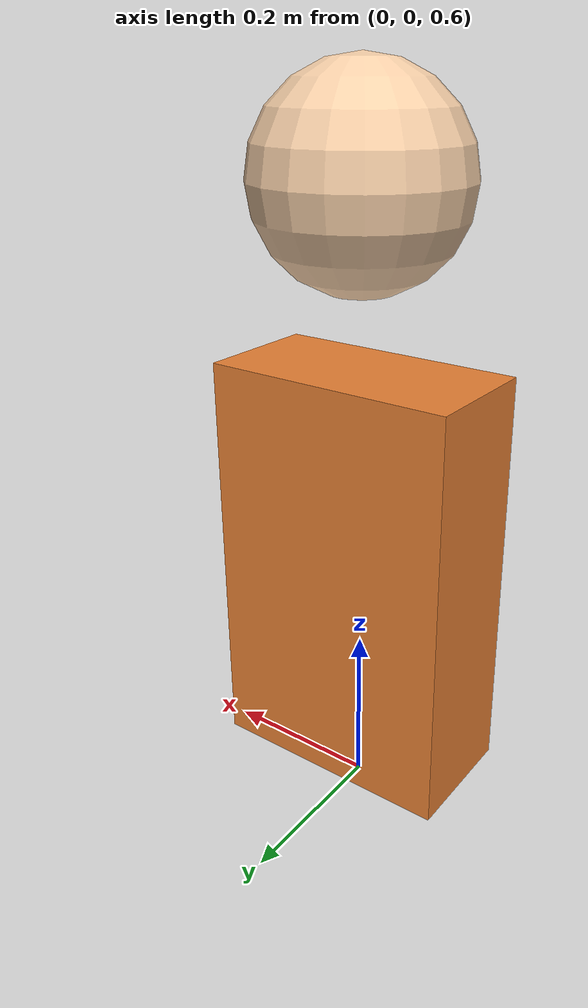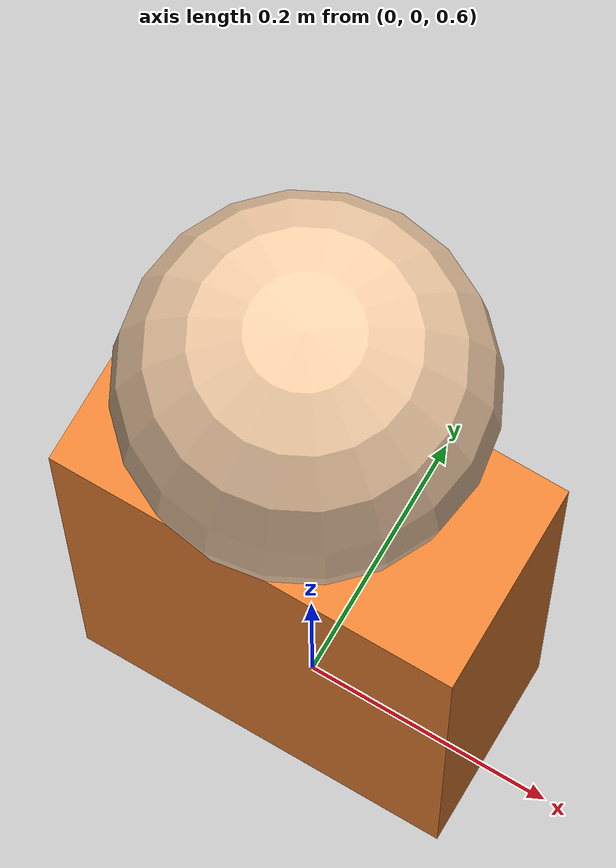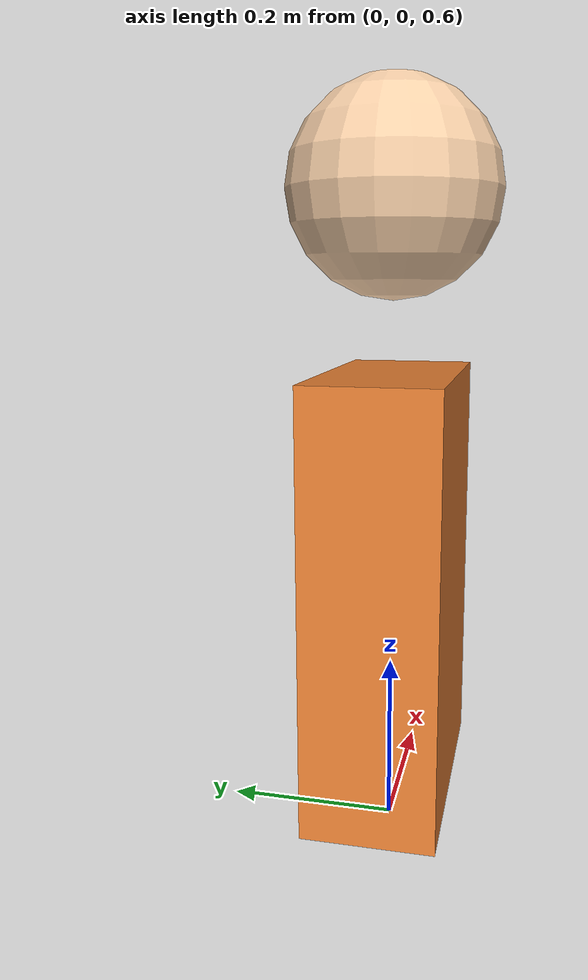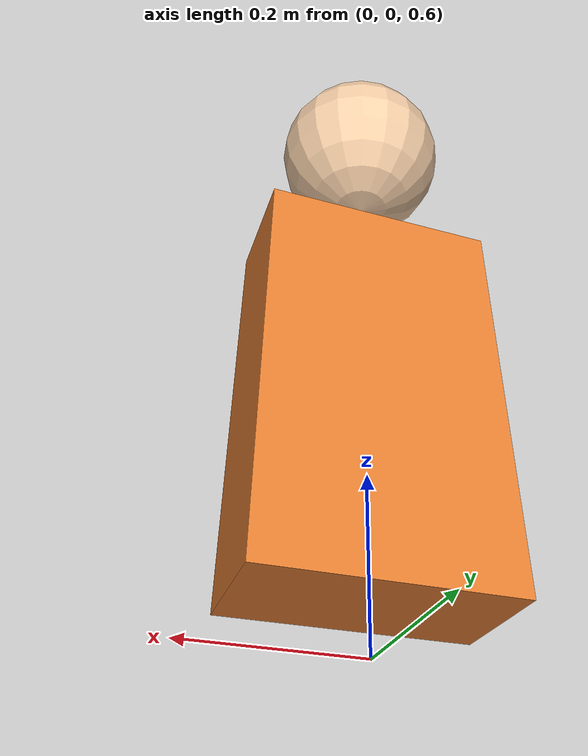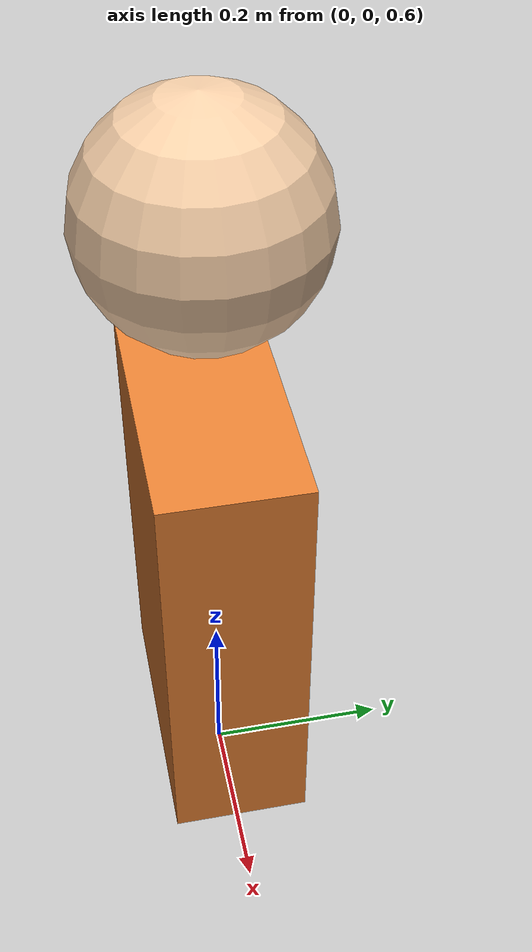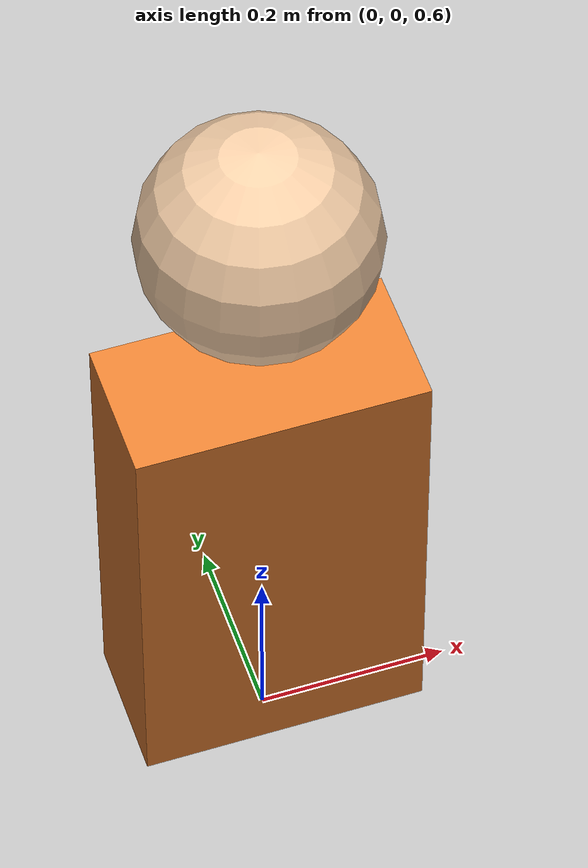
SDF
<?xml version="1.0"?>
<sdf version="1.6">
  <!-- This model is meant to be used as a reference for actor definitions
       in the warehouse.world file. Actors must be defined at the world level. -->
  <model name="human_actor_model">
    <static>true</static>
    <link name="body">
      <pose>0 0 0.9 0 0 0</pose>
      <visual name="torso">
        <pose>0 0 0 0 0 0</pose>
        <geometry><box><size>0.3 0.15 0.5</size></box></geometry>
        <material>
          <ambient>0.8 0.4 0.1 1</ambient>
          <diffuse>0.9 0.5 0.2 1</diffuse>
        </material>
      </visual>
      <collision name="collision">
        <geometry><cylinder><radius>0.2</radius><length>1.8</length></cylinder></geometry>
        <pose>0 0 0 0 0 0</pose>
      </collision>
    </link>
    <link name="head">
      <pose>0 0 1.35 0 0 0</pose>
      <visual name="visual">
        <geometry><sphere><radius>0.12</radius></sphere></geometry>
        <material>
          <ambient>0.9 0.75 0.6 1</ambient>
          <diffuse>0.95 0.8 0.65 1</diffuse>
        </material>
      </visual>
    </link>
  </model>
</sdf>
